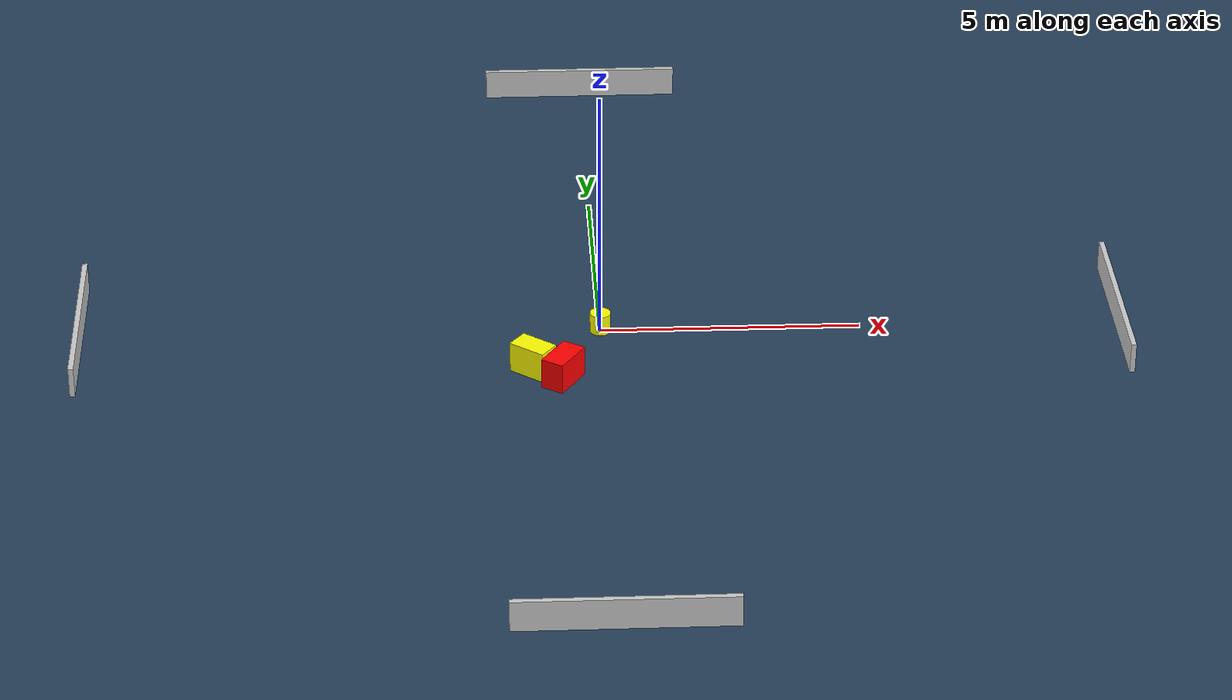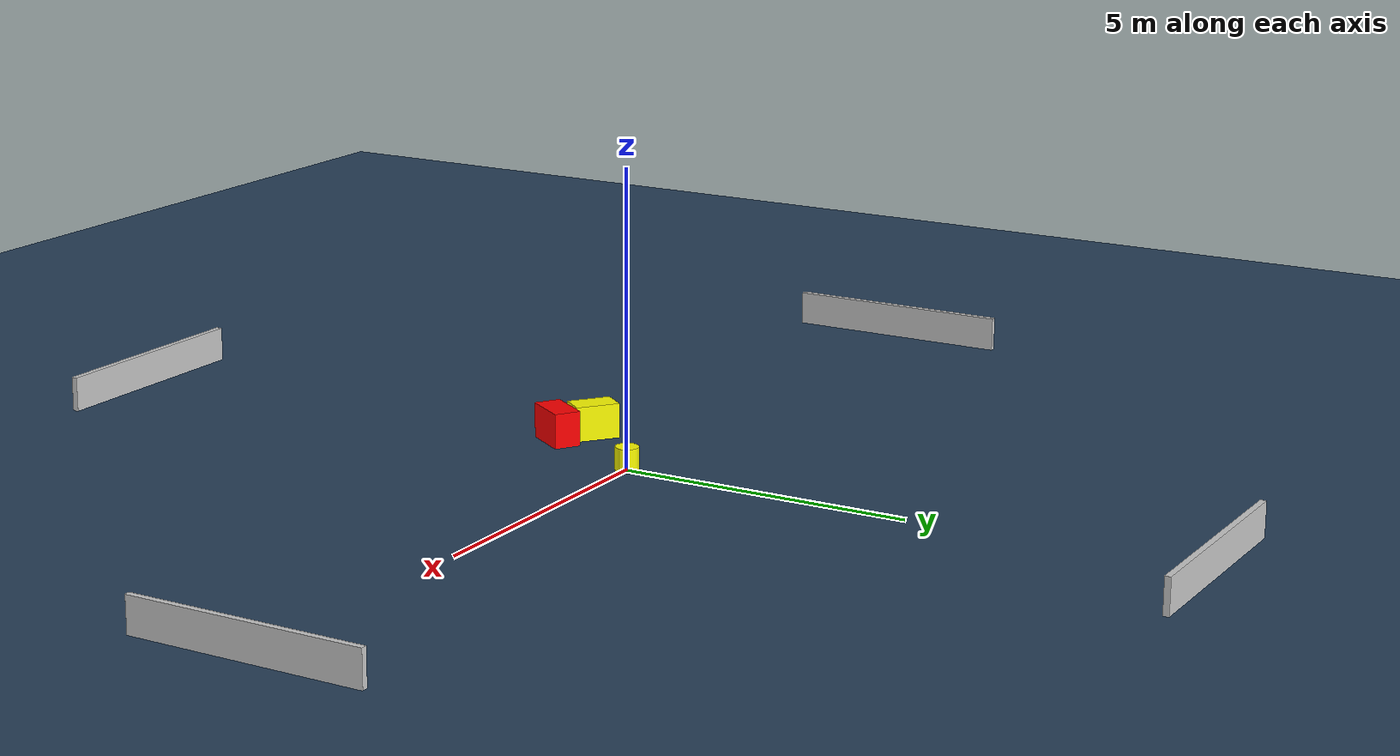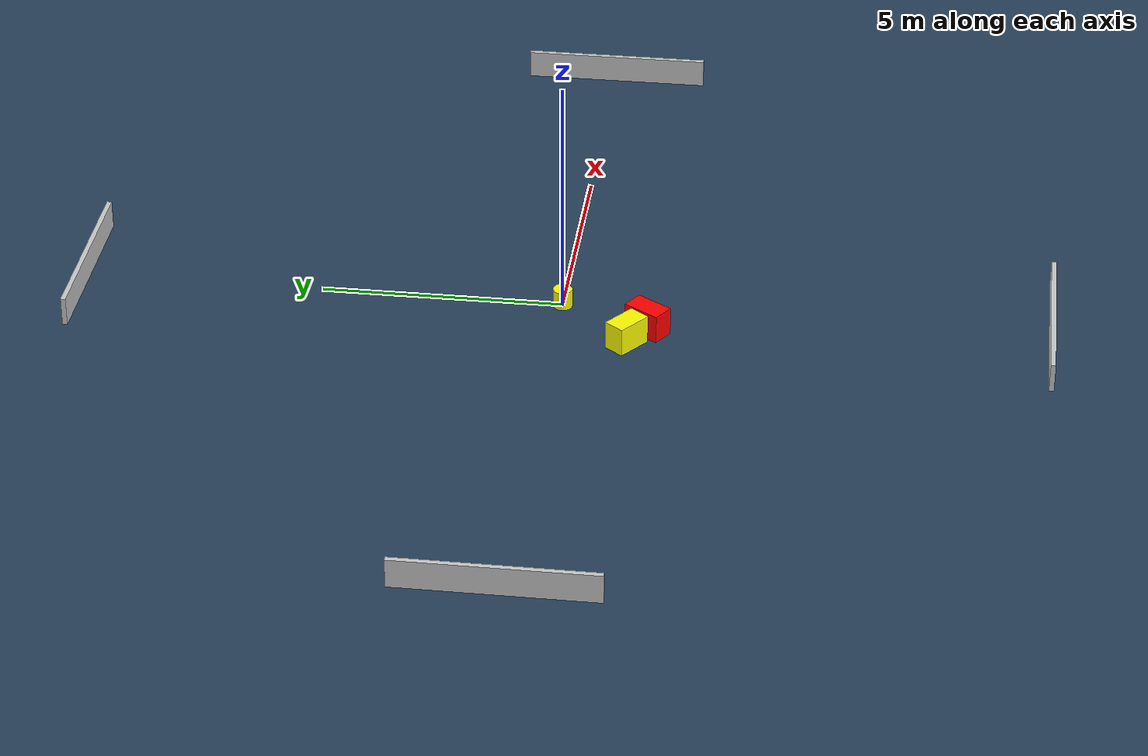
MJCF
<?xml version="1.0" ?>
<mujoco model="generated_environment">
  <option timestep="0.01" integrator="RK4" cone="elliptic"/>
  <default>
    <geom density="1"/>
  </default>
  <asset>
    <texture builtin="gradient" height="3072" name="skybox" rgb1="0.3 0.5 0.7" rgb2="0 0 0" type="skybox" width="512"/>
    <texture builtin="checker" height="300" name="groundplane" rgb1="0.2 0.3 0.4" rgb2="0.1 0.2 0.3" type="2d" width="300"/>
    <material name="groundplane" reflectance="0.2" texrepeat="5 5" texture="groundplane"/>
  </asset>
  <worldbody>
    <light dir="0 0 -1" directional="true" pos="0 0 1.5"/>
    <geom condim="3" friction="0.5 0.005 0.001" material="groundplane" name="floor" pos="0 0 0" size="0 0 0.05" type="plane"/>
    <body name="walls">
      <geom name="wall_1" condim="4" pos="-10.0 0.0 0.3" rgba="0.800000011920929 0.800000011920929 0.800000011920929 1.0" size="0.05 2.0 0.3" type="box"/>
      <geom name="wall_2" condim="4" pos="10.0 0.0 0.3" rgba="0.800000011920929 0.800000011920929 0.800000011920929 1.0" size="0.05 2.0 0.3" type="box"/>
      <geom name="wall_3" condim="4" pos="0.0 -10.0 0.3" rgba="0.800000011920929 0.800000011920929 0.800000011920929 1.0" size="2.0 0.05 0.3" type="box"/>
      <geom name="wall_4" condim="4" pos="0.0 10.0 0.3" rgba="0.800000011920929 0.800000011920929 0.800000011920929 1.0" size="2.0 0.05 0.3" type="box"/>
    </body>
    <body name="robot">
      <joint name="joint_x" type="slide" pos="0 0 0" axis="1 0 0"/>
      <joint name="joint_y" type="slide" pos="0 0 0" axis="0 1 0"/>
      <geom name="robot" type="cylinder" pos="0.0 0.0 0.2" size="0.2 0.2 0.0" mass="5.0" friction="1.0 0.005 0.0001" condim="4" rgba="1.0 1.0 0.0 1.0"/>
    </body>
    <body name="obstacle_1_movable">
      <geom name="obstacle_1_movable" condim="4" pos="-1.3340783053301986 -1.464003639176962 0.3" euler="0 0 142.1590932777523" friction="0.0 0.005 0.001" rgba="1.0 1.0 0.0 1.0" size="0.3789584447787153 0.22687852209995077 0.3" type="box" mass="0.1"/>
      <joint type="free"/>
    </body>
    <body name="obstacle_2_static">
      <geom name="obstacle_2_static" condim="4" pos="-0.7802212411427147 -1.8329436290779135 0.3" euler="0 0 56.947175765773146" friction="0.0 0.005 0.001" rgba="1.0 0.0 0.0 1.0" size="0.406350740574431 0.22970103181454193 0.3" type="box"/>
    </body>
  </worldbody>
  <actuator>
    <motor name="actuator_x" joint="joint_x" gear="1" ctrlrange="-1 1"/>
    <motor name="actuator_y" joint="joint_y" gear="1" ctrlrange="-1 1"/>
  </actuator>
</mujoco>
